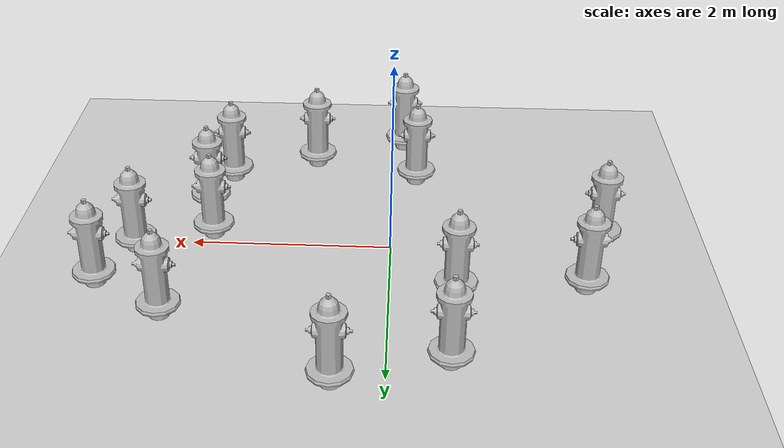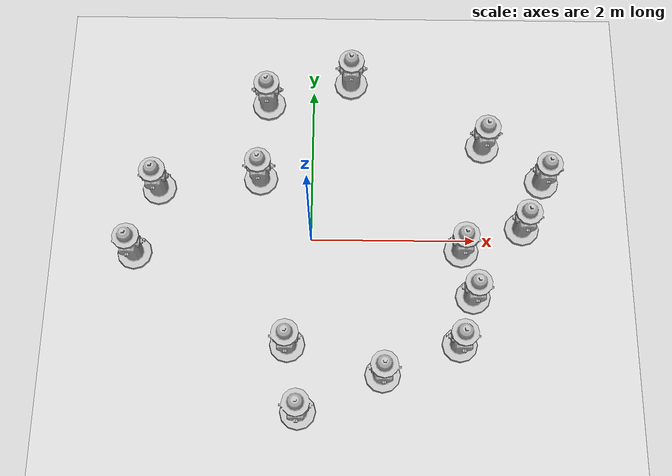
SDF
<sdf version="1.7">
 <world name="default">
  <light name="sun" type="directional">
   <pose>0 0 10 0 -0 0</pose>
   <diffuse>0.8 0.8 0.8 1</diffuse>
   <specular>0.2 0.2 0.2 1</specular>
   <attenuation>
    <range>1000</range>
    <constant>0.9</constant>
    <linear>0.01</linear>
    <quadratic>0.001</quadratic>
   </attenuation>
   <direction>-0.5 0.1 -0.9</direction>
   <spot><inner_angle>0</inner_angle><outer_angle>0</outer_angle><falloff>0</falloff></spot>
  </light>
  <model name="ground_plane">
   <static>1</static>
   <link name="link">
    <collision name="collision">
     <geometry><plane><normal>0 0 1</normal><size>100 100</size></plane></geometry>
     <surface>
      <contact><collide_bitmask>65535</collide_bitmask></contact>
      <friction><ode><mu>100</mu><mu2>50</mu2></ode></friction>
     </surface>
    </collision>
    <visual name="visual">
     <cast_shadows>0</cast_shadows>
     <geometry><plane><normal>0 0 1</normal><size>100 100</size></plane></geometry>
     <material>
      <script><uri>file://media/materials/scripts/gazebo.material</uri><name>Gazebo/Grey</name></script>
     </material>
    </visual>
   </link>
  </model>
  <gravity>0 0 -9.8</gravity>
  <magnetic_field>6e-06 2.3e-05 -4.2e-05</magnetic_field>
  <atmosphere type="adiabatic"/>
  <physics type="ode">
   <max_step_size>0.001</max_step_size>
   <real_time_factor>1</real_time_factor>
   <real_time_update_rate>1000</real_time_update_rate>
  </physics>
  <scene><ambient>0.4 0.4 0.4 1</ambient><background>0.7 0.7 0.7 1</background><shadows>1</shadows></scene>
  <audio><device>default</device></audio>
  <spherical_coordinates>
   <surface_model>EARTH_WGS84</surface_model>
   <latitude_deg>0</latitude_deg>
   <longitude_deg>0</longitude_deg>
   <elevation>0</elevation>
   <heading_deg>0</heading_deg>
  </spherical_coordinates>
  <model name="fire_hydrant">
   <static>1</static>
   <link name="link">
    <collision name="collision">
     <geometry><mesh><uri>model://fire_hydrant/meshes/fire_hydrant.dae</uri></mesh></geometry>
    </collision>
    <visual name="visual">
     <geometry><mesh><uri>model://fire_hydrant/meshes/fire_hydrant.dae</uri></mesh></geometry>
    </visual>
   </link>
   <pose>-0.249422 -1.36041 0 0 -0 0</pose>
  </model>
  <model name="fire_hydrant_0">
   <static>1</static>
   <link name="link">
    <collision name="collision">
     <geometry><mesh><uri>model://fire_hydrant/meshes/fire_hydrant.dae</uri></mesh></geometry>
    </collision>
    <visual name="visual">
     <geometry><mesh><uri>model://fire_hydrant/meshes/fire_hydrant.dae</uri></mesh></geometry>
    </visual>
   </link>
   <pose>0.864895 -1.70482 0 0 -0 0</pose>
  </model>
  <model name="fire_hydrant_1">
   <static>1</static>
   <link name="link">
    <collision name="collision">
     <geometry><mesh><uri>model://fire_hydrant/meshes/fire_hydrant.dae</uri></mesh></geometry>
    </collision>
    <visual name="visual">
     <geometry><mesh><uri>model://fire_hydrant/meshes/fire_hydrant.dae</uri></mesh></geometry>
    </visual>
   </link>
   <pose>1.76658 -1.33754 0 0 -0 0</pose>
  </model>
  <model name="fire_hydrant_2">
   <static>1</static>
   <link name="link">
    <collision name="collision">
     <geometry><mesh><uri>model://fire_hydrant/meshes/fire_hydrant.dae</uri></mesh></geometry>
    </collision>
    <visual name="visual">
     <geometry><mesh><uri>model://fire_hydrant/meshes/fire_hydrant.dae</uri></mesh></geometry>
    </visual>
   </link>
   <pose>1.81476 -0.180156 0 0 -0 0</pose>
  </model>
  <model name="fire_hydrant_3">
   <static>1</static>
   <link name="link">
    <collision name="collision">
     <geometry><mesh><uri>model://fire_hydrant/meshes/fire_hydrant.dae</uri></mesh></geometry>
    </collision>
    <visual name="visual">
     <geometry><mesh><uri>model://fire_hydrant/meshes/fire_hydrant.dae</uri></mesh></geometry>
    </visual>
   </link>
   <pose>1.93859 -0.755745 0 0 -0 0</pose>
  </model>
  <model name="fire_hydrant_4">
   <static>1</static>
   <link name="link">
    <collision name="collision">
     <geometry><mesh><uri>model://fire_hydrant/meshes/fire_hydrant.dae</uri></mesh></geometry>
    </collision>
    <visual name="visual">
     <geometry><mesh><uri>model://fire_hydrant/meshes/fire_hydrant.dae</uri></mesh></geometry>
    </visual>
   </link>
   <pose>2.55679 0.107969 0 0 -0 0</pose>
  </model>
  <model name="fire_hydrant_5">
   <static>1</static>
   <link name="link">
    <collision name="collision">
     <geometry><mesh><uri>model://fire_hydrant/meshes/fire_hydrant.dae</uri></mesh></geometry>
    </collision>
    <visual name="visual">
     <geometry><mesh><uri>model://fire_hydrant/meshes/fire_hydrant.dae</uri></mesh></geometry>
    </visual>
   </link>
   <pose>2.11439 1.19292 0 0 -0 0</pose>
  </model>
  <model name="fire_hydrant_6">
   <static>1</static>
   <link name="link">
    <collision name="collision">
     <geometry><mesh><uri>model://fire_hydrant/meshes/fire_hydrant.dae</uri></mesh></geometry>
    </collision>
    <visual name="visual">
     <geometry><mesh><uri>model://fire_hydrant/meshes/fire_hydrant.dae</uri></mesh></geometry>
    </visual>
   </link>
   <pose>2.8287 0.722617 0 0 -0 0</pose>
  </model>
  <model name="fire_hydrant_7">
   <static>1</static>
   <link name="link">
    <collision name="collision">
     <geometry><mesh><uri>model://fire_hydrant/meshes/fire_hydrant.dae</uri></mesh></geometry>
    </collision>
    <visual name="visual">
     <geometry><mesh><uri>model://fire_hydrant/meshes/fire_hydrant.dae</uri></mesh></geometry>
    </visual>
   </link>
   <pose>-1.87828 0.594623 0 0 -0 0</pose>
  </model>
  <model name="fire_hydrant_8">
   <static>1</static>
   <link name="link">
    <collision name="collision">
     <geometry><mesh><uri>model://fire_hydrant/meshes/fire_hydrant.dae</uri></mesh></geometry>
    </collision>
    <visual name="visual">
     <geometry><mesh><uri>model://fire_hydrant/meshes/fire_hydrant.dae</uri></mesh></geometry>
    </visual>
   </link>
   <pose>-0.63293 0.733493 0 0 -0 0</pose>
  </model>
  <model name="fire_hydrant_9">
   <static>1</static>
   <link name="link">
    <collision name="collision">
     <geometry><mesh><uri>model://fire_hydrant/meshes/fire_hydrant.dae</uri></mesh></geometry>
    </collision>
    <visual name="visual">
     <geometry><mesh><uri>model://fire_hydrant/meshes/fire_hydrant.dae</uri></mesh></geometry>
    </visual>
   </link>
   <pose>-0.565023 1.75893 0 0 -0 0</pose>
  </model>
  <model name="fire_hydrant_10">
   <static>1</static>
   <link name="link">
    <collision name="collision">
     <geometry><mesh><uri>model://fire_hydrant/meshes/fire_hydrant.dae</uri></mesh></geometry>
    </collision>
    <visual name="visual">
     <geometry><mesh><uri>model://fire_hydrant/meshes/fire_hydrant.dae</uri></mesh></geometry>
    </visual>
   </link>
   <pose>0.471318 2.06298 0 0 -0 0</pose>
  </model>
  <model name="fire_hydrant_11">
   <static>1</static>
   <link name="link">
    <collision name="collision">
     <geometry><mesh><uri>model://fire_hydrant/meshes/fire_hydrant.dae</uri></mesh></geometry>
    </collision>
    <visual name="visual">
     <geometry><mesh><uri>model://fire_hydrant/meshes/fire_hydrant.dae</uri></mesh></geometry>
    </visual>
   </link>
   <pose>-2.11928 -0.241635 0 0 -0 0</pose>
  </model>
  <model name="fire_hydrant_12">
   <static>1</static>
   <link name="link">
    <collision name="collision">
     <geometry><mesh><uri>model://fire_hydrant/meshes/fire_hydrant.dae</uri></mesh></geometry>
    </collision>
    <visual name="visual">
     <geometry><mesh><uri>model://fire_hydrant/meshes/fire_hydrant.dae</uri></mesh></geometry>
    </visual>
   </link>
   <pose>-0.108173 -2.14062 0 0 -0 0</pose>
  </model>
 </world>
</sdf>
